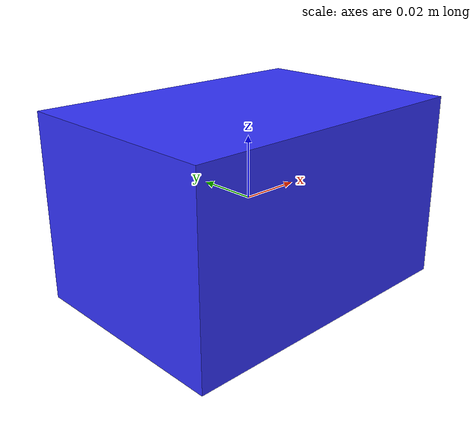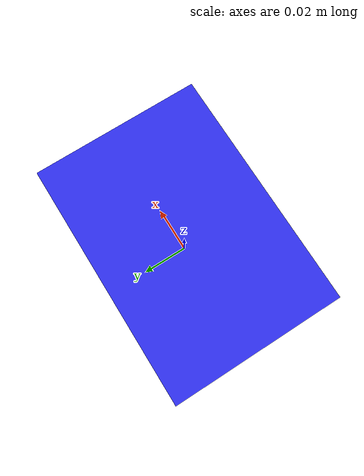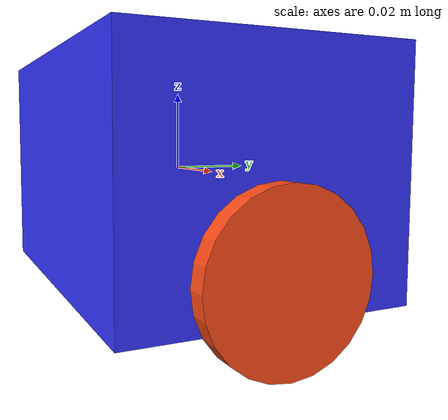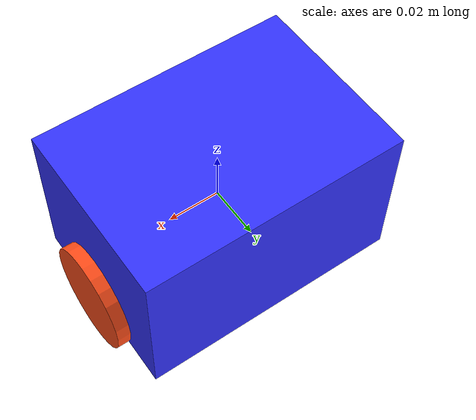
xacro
<?xml version="1.0"?>
<robot xmlns:xacro="http://www.ros.org/wiki/xacro" name="robot">
    <xacro:include filename="$(find urdf_test)/urdf/inertia.xacro" />
    <xacro:include filename="$(find urdf_test)/urdf/materials.xacro" />

    <link name="world"></link>

    <joint name="base_joint" type="fixed">
        <origin xyz="0 0 0" rpy="0 0 0"/>
        <parent link="world"/>
        <child link="base_link"/>
    </joint>

    <link name="base_link">
        <visual>
            <geometry>
                <box size="0.1 0.07 0.06" />
            </geometry>
            <material name="blue" />
        </visual>
        <collision>
            <geometry>
                <box size="0.1 0.07 0.06" />
            </geometry>
            <material name="blue" />
        </collision>
        <xacro:inertial_box mass="0.5" x="0.1" y="0.07" z="0.06">
            <origin xyz="0 0 0" rpy="0 0 0"/>
        </xacro:inertial_box>
    </link>

    <joint name="left_wheel_joint" type="continuous">
        <origin xyz="${0.05+0.005/2} 0 -0.02" rpy="0 ${pi/2} 0"/>
        <parent link="base_link"/>
        <child link="left_wheel_link"/>
        <axis xyz="0 0 -1"/>
        <limit velocity="100" effort="100"/>
    </joint>

    <link name="left_wheel_link">
        <visual>
            <origin xyz="0 0 0" rpy="0 0 0" />
            <geometry>
                <cylinder radius="0.02" length="0.005" />
            </geometry>
                <material name="orange">
            </material>
        </visual>
        <collision>
            <geometry>
                <cylinder radius="0.02" length="0.005" />
            </geometry>
        </collision>
        <xacro:inertial_cylinder mass="0.05" length="0.005" radius="0.02">
            <origin xyz="0 0 0" rpy="0 0 0"/>
        </xacro:inertial_cylinder>
    </link>
</robot>

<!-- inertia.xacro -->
<robot xmlns:xacro="http://www.ros.org/wiki/xacro" >
    <!-- Specify some standard inertial calculations https://en.wikipedia.org/wiki/List_of_moments_of_inertia -->
    <!-- These make use of xacro's mathematical functionality -->

    <xacro:macro name="inertial_sphere" params="mass radius *origin">
        <inertial>
            <xacro:insert_block name="origin"/>
            <mass value="${mass}" />
            <inertia ixx="${(2/5) * mass * (radius*radius)}" ixy="0.0" ixz="0.0"
                    iyy="${(2/5) * mass * (radius*radius)}" iyz="0.0"
                    izz="${(2/5) * mass * (radius*radius)}" />
        </inertial>
    </xacro:macro>

    <xacro:macro name="inertial_box" params="mass x y z *origin">
        <inertial>
            <xacro:insert_block name="origin"/>
            <mass value="${mass}" />
            <inertia ixx="${(1/12) * mass * (y*y+z*z)}" ixy="0.0" ixz="0.0"
                    iyy="${(1/12) * mass * (x*x+z*z)}" iyz="0.0"
                    izz="${(1/12) * mass * (x*x+y*y)}" />
        </inertial>
    </xacro:macro>

    <xacro:macro name="inertial_cylinder" params="mass length radius *origin">
        <inertial>
            <xacro:insert_block name="origin"/>
            <mass value="${mass}" />
            <inertia ixx="${(1/12) * mass * (3*radius*radius + length*length)}" ixy="0.0" ixz="0.0"
                    iyy="${(1/12) * mass * (3*radius*radius + length*length)}" iyz="0.0"
                    izz="${(1/2) * mass * (radius*radius)}" />
        </inertial>
    </xacro:macro>

</robot>

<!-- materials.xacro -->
<robot xmlns:xacro="http://www.ros.org/wiki/xacro" >
    <!-- Specify some colours -->
    <material name="white">
        <color rgba="1 1 1 1"/>
    </material>

    <material name="orange">
        <color rgba="1 0.3 0.1 1"/>
    </material>

    <material name="blue">
        <color rgba="0.2 0.2 1 1"/>
    </material>
</robot>
